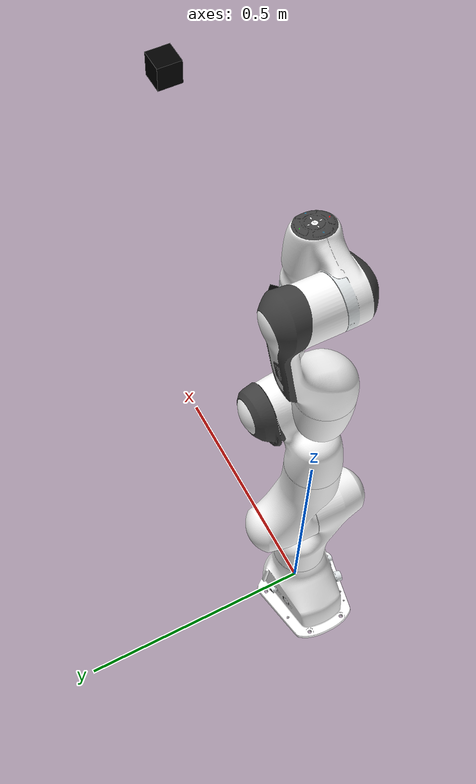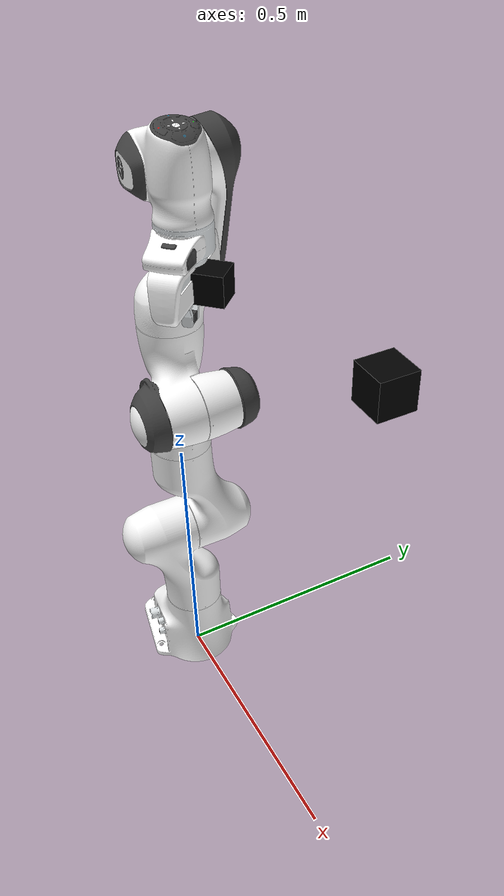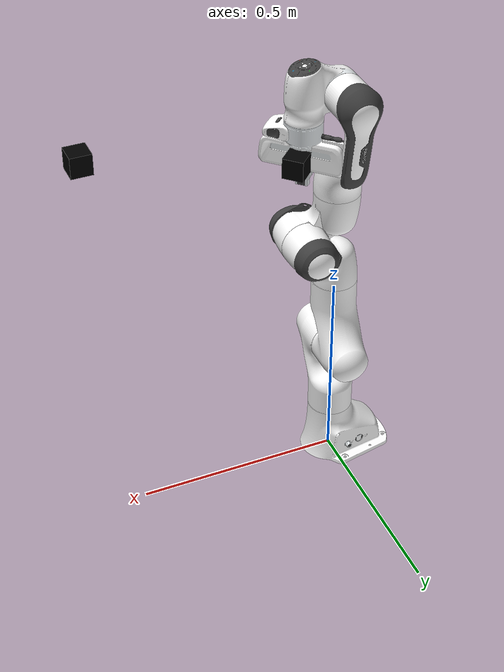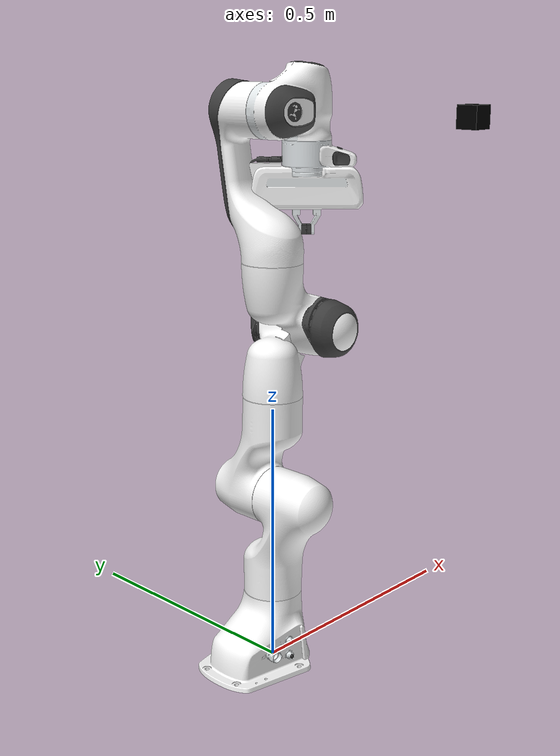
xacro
<?xml version="1.0"?>
<robot xmlns:xacro="http://www.ros.org/wiki/xacro" name="panda">
    <xacro:arg name="initial_positions_file" default="initial_positions.yaml" />

    <!-- Import panda urdf file -->
    <xacro:include filename="$(find panda_description)/urdf/panda.urdf" />

    <!-- Import control_xacro -->
    <xacro:include filename="panda.ros2_control.xacro" />

    <xacro:panda_ros2_control name="FakeSystem" initial_positions_file="$(arg initial_positions_file)"/>

    <xacro:include filename="$(find franka_moveit_config)/config/camera.xacro" />
    <xacro:add_camera name="hand_camera" parent_link="panda_hand" xyz="0.04 0 0.04" rpy="3.1415 -1.5708 0" />
    <xacro:add_camera name="overhead_camera" parent_link="world" xyz="0.6 0 1.0" rpy="0 1.5708 0" />
</robot>

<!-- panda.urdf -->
<!-- |    This document was autogenerated by xacro from /opt/ros/kinetic/share/moveit_resources/panda_description/urdf/panda.urdf | -->
<!-- |    EDITING THIS FILE BY HAND IS NOT RECOMMENDED                                 | -->
<robot name="panda" xmlns:xacro="http://www.ros.org/wiki/xacro">
    <link name="world"/>

    <link name="panda_link0">
        <visual>
            <geometry>
                <mesh filename="package://panda_description/meshes/visual/link0.dae" />
            </geometry>
        </visual>
        <collision>
            <geometry>
                <mesh filename="package://panda_description/meshes/collision/link0.stl" />
            </geometry>
        </collision>
        <inertial>
          <origin xyz="0 0 0" rpy="0.0 0.0 0.0"/>
          <mass value="0.1"/>
        <inertia ixx="0.1" ixy="0.0" ixz="0.0" iyy="0.1" iyz="0.0" izz="0.1"/>
      </inertial>
    </link>
    <joint name="world_joint" type="fixed">
    <parent link="world"/>
    <child link="panda_link0"/>
    <origin xyz="0 0 0" rpy="0 0 0"/>
    </joint>

    <link name="panda_link1">
        <visual>
            <geometry>
                <mesh filename="package://panda_description/meshes/visual/link1.dae" />
            </geometry>
        </visual>
        <collision>
            <geometry>
                <mesh filename="package://panda_description/meshes/collision/link1.stl" />
            </geometry>
        </collision>
        <inertial>
          <origin xyz="0 0 0" rpy="0.0 0.0 0.0"/>
          <mass value="0.1"/>
        <inertia ixx="0.1" ixy="0.0" ixz="0.0" iyy="0.1" iyz="0.0" izz="0.1"/>
      </inertial>
    </link>
    <joint name="panda_joint1" type="revolute">
        <safety_controller k_position="100.0" k_velocity="40.0" soft_lower_limit="-2.8973" soft_upper_limit="2.8973" />
        <origin rpy="0 0 0" xyz="0 0 0.333" />
        <parent link="panda_link0" />
        <child link="panda_link1" />
        <axis xyz="0 0 1" />
        <limit effort="87" lower="-2.9671" upper="2.9671" velocity="2.3925" />
    </joint>
    <link name="panda_link2">
        <visual>
            <geometry>
                <mesh filename="package://panda_description/meshes/visual/link2.dae" />
            </geometry>
        </visual>
        <collision>
            <geometry>
                <mesh filename="package://panda_description/meshes/collision/link2.stl" />
            </geometry>
        </collision>
        <inertial>
          <origin xyz="0 0 0" rpy="0.0 0.0 0.0"/>
          <mass value="0.1"/>
          <inertia ixx="0.1" ixy="0.0" ixz="0.0" iyy="0.1" iyz="0.0" izz="0.1"/>
        </inertial>
    </link>
    <joint name="panda_joint2" type="revolute">
        <safety_controller k_position="100.0" k_velocity="40.0" soft_lower_limit="-1.7628" soft_upper_limit="1.7628" />
        <origin rpy="-1.57079632679 0 0" xyz="0 0 0" />
        <parent link="panda_link1" />
        <child link="panda_link2" />
        <axis xyz="0 0 1" />
        <limit effort="87" lower="-1.8326" upper="1.8326" velocity="2.3925" />
    </joint>
    <link name="panda_link3">
        <visual>
            <geometry>
                <mesh filename="package://panda_description/meshes/visual/link3.dae" />
            </geometry>
        </visual>
        <collision>
            <geometry>
                <mesh filename="package://panda_description/meshes/collision/link3.stl" />
            </geometry>
        </collision>
        <inertial>
          <origin xyz="0 0 0" rpy="0.0 0.0 0.0"/>
          <mass value="0.1"/>
          <inertia ixx="0.1" ixy="0.0" ixz="0.0" iyy="0.1" iyz="0.0" izz="0.1"/>
        </inertial>
    </link>
    <joint name="panda_joint3" type="revolute">
        <safety_controller k_position="100.0" k_velocity="40.0" soft_lower_limit="-2.8973" soft_upper_limit="2.8973" />
        <origin rpy="1.57079632679 0 0" xyz="0 -0.316 0" />
        <parent link="panda_link2" />
        <child link="panda_link3" />
        <axis xyz="0 0 1" />
        <limit effort="87" lower="-2.9671" upper="2.9671" velocity="2.3925" />
    </joint>
    <link name="panda_link4">
        <visual>
            <geometry>
                <mesh filename="package://panda_description/meshes/visual/link4.dae" />
            </geometry>
        </visual>
        <collision>
            <geometry>
                <mesh filename="package://panda_description/meshes/collision/link4.stl" />
            </geometry>
        </collision>
        <inertial>
          <origin xyz="0 0 0" rpy="0.0 0.0 0.0"/>
          <mass value="0.1"/>
          <inertia ixx="0.1" ixy="0.0" ixz="0.0" iyy="0.1" iyz="0.0" izz="0.1"/>
        </inertial>
    </link>
    <joint name="panda_joint4" type="revolute">
        <safety_controller k_position="100.0" k_velocity="40.0" soft_lower_limit="-3.0718" soft_upper_limit="0.0175" />
        <origin rpy="1.57079632679 0 0" xyz="0.0825 0 0" />
        <parent link="panda_link3" />
        <child link="panda_link4" />
        <axis xyz="0 0 1" />
        <limit effort="87" lower="-3.1416" upper="0.0873" velocity="2.3925" />
    </joint>
    <link name="panda_link5">
        <visual>
            <geometry>
                <mesh filename="package://panda_description/meshes/visual/link5.dae" />
            </geometry>
        </visual>
        <collision>
            <geometry>
                <mesh filename="package://panda_description/meshes/collision/link5.stl" />
            </geometry>
        </collision>
        <inertial>
          <origin xyz="0 0 0" rpy="0.0 0.0 0.0"/>
          <mass value="0.1"/>
          <inertia ixx="0.1" ixy="0.0" ixz="0.0" iyy="0.1" iyz="0.0" izz="0.1"/>
        </inertial>
    </link>
    <joint name="panda_joint5" type="revolute">
        <safety_controller k_position="100.0" k_velocity="40.0" soft_lower_limit="-2.8973" soft_upper_limit="2.8973" />
        <origin rpy="-1.57079632679 0 0" xyz="-0.0825 0.384 0" />
        <parent link="panda_link4" />
        <child link="panda_link5" />
        <axis xyz="0 0 1" />
        <limit effort="12" lower="-2.9671" upper="2.9671" velocity="2.8710" />
    </joint>
    <link name="panda_link6">
        <visual>
            <geometry>
                <mesh filename="package://panda_description/meshes/visual/link6.dae" />
            </geometry>
        </visual>
        <collision>
            <geometry>
                <mesh filename="package://panda_description/meshes/collision/link6.stl" />
            </geometry>
        </collision>
        <inertial>
          <origin xyz="0 0 0" rpy="0.0 0.0 0.0"/>
          <mass value="0.1"/>
          <inertia ixx="0.1" ixy="0.0" ixz="0.0" iyy="0.1" iyz="0.0" izz="0.1"/>
        </inertial>
    </link>
    <joint name="panda_joint6" type="revolute">
        <safety_controller k_position="100.0" k_velocity="40.0" soft_lower_limit="-0.0175" soft_upper_limit="3.7525" />
        <origin rpy="1.57079632679 0 0" xyz="0 0 0" />
        <parent link="panda_link5" />
        <child link="panda_link6" />
        <axis xyz="0 0 1" />
        <limit effort="12" lower="-0.0873" upper="3.8223" velocity="2.8710" />
    </joint>
    <link name="panda_link7">
        <visual>
            <geometry>
                <mesh filename="package://panda_description/meshes/visual/link7.dae" />
            </geometry>
        </visual>
        <collision>
            <geometry>
                <mesh filename="package://panda_description/meshes/collision/link7.stl" />
            </geometry>
        </collision>
        <inertial>
          <origin xyz="0 0 0" rpy="0.0 0.0 0.0"/>
          <mass value="0.1"/>
          <inertia ixx="0.1" ixy="0.0" ixz="0.0" iyy="0.1" iyz="0.0" izz="0.1"/>
        </inertial>
    </link>
    <joint name="panda_joint7" type="revolute">
        <safety_controller k_position="100.0" k_velocity="40.0" soft_lower_limit="-2.8973" soft_upper_limit="2.8973" />
        <origin rpy="1.57079632679 0 0" xyz="0.088 0 0" />
        <parent link="panda_link6" />
        <child link="panda_link7" />
        <axis xyz="0 0 1" />
        <limit effort="12" lower="-2.9671" upper="2.9671" velocity="2.8710" />
    </joint>
    <link name="panda_link8" />
    <joint name="panda_joint8" type="fixed">
        <origin rpy="0 0 0" xyz="0 0 0.107" />
        <parent link="panda_link7" />
        <child link="panda_link8" />
        <axis xyz="0 0 0" />
    </joint>
    <joint name="panda_hand_joint" type="fixed">
        <parent link="panda_link8" />
        <child link="panda_hand" />
        <origin rpy="0 0 -0.785398163397" xyz="0 0 0" />
    </joint>
    <link name="panda_hand">
        <visual>
            <geometry>
                <mesh filename="package://panda_description/meshes/visual/hand.dae" />
            </geometry>
        </visual>
        <collision>
            <geometry>
                <mesh filename="package://panda_description/meshes/collision/hand.stl" />
            </geometry>
        </collision>
        <inertial>
          <origin xyz="0 0 0" rpy="0.0 0.0 0.0"/>
          <mass value="0.1"/>
          <inertia ixx="0.1" ixy="0.0" ixz="0.0" iyy="0.1" iyz="0.0" izz="0.1"/>
        </inertial>
    </link>
    <link name="panda_leftfinger">
        <visual>
            <geometry>
                <mesh filename="package://panda_description/meshes/visual/finger.dae" />
            </geometry>
        </visual>
        <collision>
            <geometry>
                <mesh filename="package://panda_description/meshes/collision/finger.stl" />
            </geometry>
        </collision>
        <inertial>
          <origin xyz="0 0 0" rpy="0.0 0.0 0.0"/>
          <mass value="0.1"/>
          <inertia ixx="0.1" ixy="0.0" ixz="0.0" iyy="0.1" iyz="0.0" izz="0.1"/>
        </inertial>
    </link>
    <link name="panda_rightfinger">
        <visual>
            <origin rpy="0 0 3.14159265359" xyz="0 0 0" />
            <geometry>
                <mesh filename="package://panda_description/meshes/visual/finger.dae" />
            </geometry>
        </visual>
        <collision>
            <origin rpy="0 0 3.14159265359" xyz="0 0 0" />
            <geometry>
                <mesh filename="package://panda_description/meshes/collision/finger.stl" />
            </geometry>
        </collision>
        <inertial>
          <origin xyz="0 0 0" rpy="0.0 0.0 0.0"/>
          <mass value="0.1"/>
          <inertia ixx="0.1" ixy="0.0" ixz="0.0" iyy="0.1" iyz="0.0" izz="0.1"/>
        </inertial>
    </link>
    <joint name="panda_finger_joint1" type="prismatic">
        <parent link="panda_hand" />
        <child link="panda_leftfinger" />
        <origin rpy="0 0 0" xyz="0 0 0.0584" />
        <axis xyz="0 1 0" />
        <limit effort="20" lower="0.0" upper="0.04" velocity="0.2" />
    </joint>
    <joint name="panda_finger_joint2" type="prismatic">
        <parent link="panda_hand" />
        <child link="panda_rightfinger" />
        <origin rpy="0 0 0" xyz="0 0 0.0584" />
        <axis xyz="0 -1 0" />
        <limit effort="20" lower="0.0" upper="0.04" velocity="0.2" />
        <mimic joint="panda_finger_joint1" multiplier="1.0"/>
    </joint>
</robot>

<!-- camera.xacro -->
<robot xmlns:xacro="http://www.ros.org/wiki/xacro">

  <xacro:macro name="add_camera" params="name parent_link xyz rpy">

    <link name="${name}_link">
      <visual>
        <geometry><box size="0.05 0.05 0.05"/></geometry>
        <material name="black"><color rgba="0 0 0 1"/></material>
      </visual>

      <inertial>
        <mass value="0.01"/>
        <inertia ixx="0.0001" ixy="0" ixz="0" iyy="0.0001" iyz="0" izz="0.0001"/>
      </inertial>
    </link>

    <joint name="${name}_joint" type="fixed">
      <parent link="${parent_link}"/>
      <child link="${name}_link"/>
      <origin xyz="${xyz}" rpy="${rpy}"/>
    </joint>

    <link name="${name}_link_optical" />

    <joint name="${name}_optical_joint" type="fixed">
      <parent link="${name}_link"/>
      <child link="${name}_link_optical"/>
      <origin xyz="0 0 0" rpy="-1.5708 0 -1.5708"/>
    </joint>

    <gazebo reference="${name}_link">
      <sensor name="${name}_sensor" type="camera">
            <pose>0 0 0 0 0 0</pose>
            <visualize>true</visualize>
            <update_rate>10.0</update_rate>
            <alwaysOn>true</alwaysOn>
            <topic>camera/${name}/image_raw</topic>
            <gz_frame_id>${name}_link_optical</gz_frame_id>
            <camera name="intel_realsense_r200">
                <camera_info_topic>camera/${name}/camera_info</camera_info_topic>
                <horizontal_fov>1.0</horizontal_fov>
                <image>
                    <width>640</width>
                    <height>480</height>
                    <format>R8G8B8</format>
                </image>
                <clip>
                    <near>0.05</near>
                    <far>8.0</far>
                </clip>
            </camera>
      </sensor>
    </gazebo>

  </xacro:macro>
</robot>
